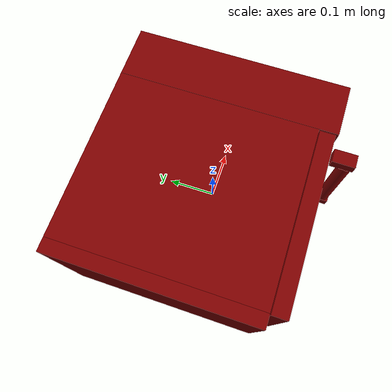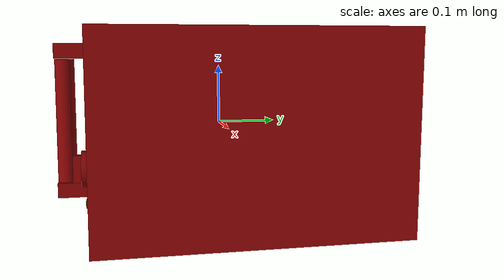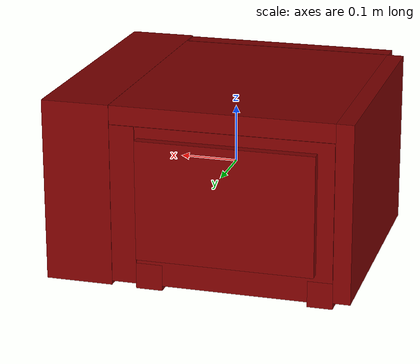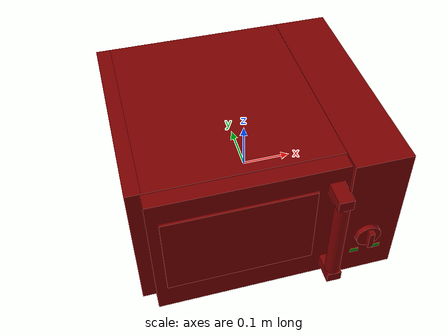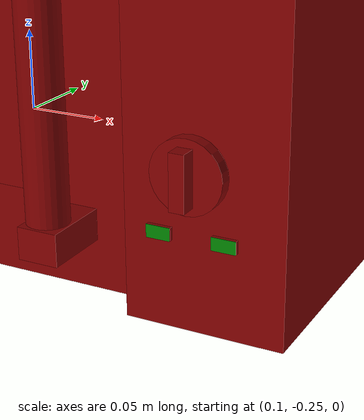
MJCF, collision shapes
<mujoco model="model">
  <compiler angle="radian"/>
  <asset>
    <mesh file="visuals/door.obj" name="door_vis"/>
    <mesh file="visuals/door_Clear.obj" name="door_Clear_vis"/>
    <mesh file="visuals/Body001.obj" name="Body001_vis"/>
    <mesh file="visuals/Button001.obj" name="Button001_vis"/>
    <mesh file="visuals/Button002.obj" name="Button002_vis"/>
    <mesh file="visuals/Disc001.obj" name="Disc001_vis"/>
    <mesh file="visuals/Knob001.obj" name="Knob001_vis"/>
    <texture file="visuals/T_BC001.png" name="Body001_material" type="2d"/>
    <material name="Body001_material" rgba="1 1 1 1.0" texture="Body001_material" shininess="0.4472135901451111" specular="0.3103448502657381"/>
    <texture file="visuals/T_BC001.png" name="door_material" type="2d"/>
    <material name="door_material" rgba="1 1 1 1.0" texture="door_material" shininess="0.4472135901451111" specular="0.3103448502657381"/>
    <material name="door_Clear_material" rgba="0.02614923194050789 0.02614923194050789 0.02614923194050789 0.8999999761581421" shininess="0.4472135901451111" specular="0.3103448502657381"/>
    <texture file="visuals/T_BC001.png" name="Button001_material" type="2d"/>
    <material name="Button001_material" rgba="1 1 1 1.0" texture="Button001_material" shininess="0.4472135901451111" specular="0.3103448502657381"/>
    <texture file="visuals/T_BC001.png" name="Button002_material" type="2d"/>
    <material name="Button002_material" rgba="1 1 1 1.0" texture="Button002_material" shininess="0.4472135901451111" specular="0.3103448502657381"/>
    <texture file="visuals/T_BC001.png" name="Disc001_material" type="2d"/>
    <material name="Disc001_material" rgba="1 1 1 1.0" texture="Disc001_material" shininess="0.4472135901451111" specular="0.3103448502657381"/>
    <texture file="visuals/T_BC001.png" name="Knob001_material" type="2d"/>
    <material name="Knob001_material" rgba="1 1 1 1.0" texture="Knob001_material" shininess="0.4472135901451111" specular="0.3103448502657381"/>
  </asset>
  <default>
    <default class="visual">
      <geom conaffinity="0" contype="0" group="1" type="mesh"/>
    </default>
    <default class="collision">
      <geom group="0" rgba="0.5 0 0 0.5"/>
    </default>
    <default class="spawn">
      <geom group="0" rgba="1 1 1 0.5" contype="0" conaffinity="0"/>
      <site group="0" rgba="1 1 1 0.5"/>
    </default>
    <default class="region">
      <geom group="1" conaffinity="0" contype="0" rgba="0 1 0 0"/>
    </default>
  </default>
  <worldbody>
    <body>
      <body name="object">
        <geom class="collision" type="box" pos="-0.06560337543487549 0.0 -0.10339121520519257" size="0.12126452475786209 0.12126452475786209 0.0008784863748587668" quat="1.0 0.0 0.0 0.0" name="tray" rgba="0 1 0 0.5"/>
        <geom class="collision" type="box" pos="0.17174172401428223 -0.22179532051086426 -0.08175776153802872" size="0.00878062006086111 0.0001540658122394234 0.0046617090702056885" quat="1.0 0.0 0.0 0.0" name="start_button" rgba="0.0 0.5 0 0.5"/>
        <geom class="collision" type="box" pos="0.21884146332740784 -0.22179532051086426 -0.08175776153802872" size="0.00878062378615141 0.00015406592865474522 0.00466171046718955" quat="1.0 0.0 0.0 0.0" name="stop_button" rgba="0.0 0.5 0 0.5"/>
        <geom mesh="Body001_vis" type="mesh" solimp="0.998 0.998 0.001" solref="0.001 1" density="100" friction="0.95 0.3 0.1" class="visual" material="Body001_material"/>
        <geom class="collision" type="box" pos="0.20260481536388397 0.017733678221702576 0.006201272830367088" size="0.057745590806007385 0.23598650097846985 0.15633100271224976" quat="1.0 0.0 0.0 0.0"/>
        <geom class="collision" type="box" pos="-0.24562764167785645 0.037938203662633896 0.011019268073141575" size="0.01472244132310152 0.21578072011470795 0.1515129655599594" quat="1.0 0.0 0.0 0.0"/>
        <geom class="collision" type="box" pos="-0.043323248624801636 0.037938203662633896 0.1464553326368332" size="0.18785139918327332 0.2157806158065796 0.016076261177659035" quat="1.0 0.0 0.0 0.0"/>
        <geom class="collision" type="box" pos="0.12333248555660248 0.0379381962120533 -0.006596706807613373" size="0.021194791421294212 0.21578048169612885 0.13651135563850403" quat="1.0 0.0 0.0 0.0"/>
        <geom class="collision" type="box" pos="-0.06453181058168411 0.21428245306015015 -0.006596706807613373" size="0.1658235639333725 0.039435576647520065 0.13651125133037567" quat="1.0 0.0 0.0 0.0"/>
        <geom class="collision" type="box" pos="-0.052900463342666626 0.26134318113327026 0.00855961348861456" size="0.1496560126543045 0.008506108075380325 0.10244230180978775" quat="1.0 0.0 0.0 0.0"/>
        <geom class="collision" type="box" pos="-0.06617458909749985 -0.0006304048001766205 -0.1310829371213913" size="0.12169666588306427 0.12449190020561218 0.020290575921535492" quat="1.0 0.0 0.0 0.0"/>
        <geom class="collision" type="cylinder" pos="0.18422241508960724 0.20088230073451996 -0.1562982201576233" size="0.0076891290955245495 0.006233311723917723" quat="1.0 0.0 0.0 0.0"/>
        <geom class="collision" type="cylinder" pos="-0.2033960074186325 0.20093315839767456 -0.1562982201576233" size="0.0076891290955245495 0.006233311723917723" quat="1.0 0.0 0.0 0.0"/>
        <geom class="collision" type="cylinder" pos="-0.2033960074186325 -0.1307898312807083 -0.1562982201576233" size="0.0076891290955245495 0.006233311723917723" quat="1.0 0.0 0.0 0.0"/>
        <geom class="collision" type="cylinder" pos="0.18422241508960724 -0.13078086078166962 -0.1562982201576233" size="0.0076891290955245495 0.006233311723917723" quat="1.0 0.0 0.0 0.0"/>
        <geom class="collision" type="box" pos="-0.20993509888648987 0.0379381962120533 -0.12881769239902496" size="0.021281475201249123 0.21578006446361542 0.02255580760538578" quat="1.0 0.0 0.0 0.0"/>
        <geom class="collision" type="box" pos="0.0796261876821518 0.0379381962120533 -0.12881769239902496" size="0.022679757326841354 0.21577996015548706 0.022555794566869736" quat="1.0 0.0 0.0 0.0"/>
        <geom class="collision" type="box" pos="-0.06573959439992905 -0.151581808924675 -0.12881769239902496" size="0.1227508932352066 0.026259683072566986 0.02255578152835369" quat="1.0 0.0 0.0 0.0"/>
        <geom class="collision" type="box" pos="-0.06573959439992905 0.1492924690246582 -0.12881769239902496" size="0.12275078892707825 0.025356236845254898 0.022555768489837646" quat="1.0 0.0 0.0 0.0"/>
        <body name="door">
          <joint axis="0.0 0.0 1.0" pos="-0.24042923748493195 -0.19968517124652863 0.012421272695064545" limited="true" name="microjoint" range="-1.5707963267948966 0.0" type="hinge" damping="1" frictionloss="1" armature=".01" stiffness="0.05"/>
          <geom mesh="door_vis" type="mesh" solimp="0.998 0.998 0.001" solref="0.001 1" density="100" friction="0.95 0.3 0.1" class="visual" material="door_material"/>
          <geom class="collision" type="box" pos="-0.04574286565184593 -0.19574102759361267 0.012378141283988953" size="0.1876501590013504 0.016191832721233368 0.15015338361263275" quat="1.0 0.0 0.0 0.0"/>
          <geom class="collision" type="cylinder" pos="0.11001839488744736 -0.2554267346858978 0.020983519032597542" size="0.014583306387066841 0.09386807680130005" quat="1.0 0.0 0.0 0.0" name="door_handle"/>
          <geom class="collision" type="box" pos="0.11032681912183762 -0.2453685849905014 0.12733007967472076" size="0.014486672356724739 0.024532847106456757 0.011350457556545734" quat="1.0 0.0 0.0 0.0"/>
          <geom class="collision" type="box" pos="0.11032681912183762 -0.2453685849905014 -0.0853961631655693" size="0.014486672356724739 0.024532847106456757 0.011350457556545734" quat="1.0 0.0 0.0 0.0"/>
          <body name="door_Clear">
            <geom mesh="door_Clear_vis" type="mesh" solimp="0.998 0.998 0.001" solref="0.001 1" density="100" friction="0.95 0.3 0.1" class="visual" material="door_Clear_material"/>
            <geom class="collision" type="box" pos="-0.0656575858592987 -0.2149108648300171 0.021771375089883804" size="0.146141916513443 0.0026013606693595648 0.09315399080514908" quat="1.0 0.0 0.0 0.0"/>
          </body>
        </body>
        <body name="Button001">
          <joint axis="0.0 1.0 0.0" pos="0.1717521697282791 -0.21999520063400269 -0.08224629610776901" limited="true" name="Button001_joint" range="0.0 0.002" type="slide" damping="1" frictionloss="1" armature=".01" stiffness="0.05"/>
          <geom mesh="Button001_vis" type="mesh" solimp="0.998 0.998 0.001" solref="0.001 1" density="100" friction="0.95 0.3 0.1" class="visual" material="Button001_material"/>
          <geom class="collision" type="box" pos="0.17174172401428223 -0.2200479954481125 -0.08175776153802872" size="0.008780617266893387 0.0014315831940621138 0.004661707207560539" quat="1.0 0.0 0.0 0.0"/>
        </body>
        <body name="Button002">
          <joint axis="0.0 1.0 0.0" pos="0.21889732778072357 -0.21999520063400269 -0.08224629610776901" limited="true" name="Button002_joint" range="0.0 0.002" type="slide" damping="1" frictionloss="1" armature=".01" stiffness="0.05"/>
          <geom mesh="Button002_vis" type="mesh" solimp="0.998 0.998 0.001" solref="0.001 1" density="100" friction="0.95 0.3 0.1" class="visual" material="Button002_material"/>
          <geom class="collision" type="box" pos="0.21884146332740784 -0.2200479954481125 -0.08175776153802872" size="0.008780626580119133 0.0014315856387838721 0.0046617123298347" quat="1.0 0.0 0.0 0.0"/>
        </body>
        <body name="Disc001">
          <joint axis="0.0 0.0 1.0" pos="-0.06596428155899048 -0.00033851340413093567 -0.10561323910951614" limited="false" name="Disc001_joint" range="0 360" type="hinge" damping="1" frictionloss="1" armature=".01" stiffness="0.05"/>
          <geom mesh="Disc001_vis" type="mesh" solimp="0.998 0.998 0.001" solref="0.001 1" density="100" friction="0.95 0.3 0.1" class="visual" material="Disc001_material"/>
          <geom class="collision" type="cylinder" pos="-0.06560337543487549 0.0 -0.10716009885072708" size="0.12126270681619644 0.002095442730933428" quat="1.0 0.0 0.0 0.0"/>
        </body>
        <body name="Knob001">
          <joint axis="0.0 1.0 0.0" pos="0.19532474875450134 -0.22898626327514648 -0.03751338645815849" limited="true" name="Knob001_joint" range="0.0 4.886921905584122" type="hinge" damping="0.05" armature="0.001" springref="-0.01"/>
          <geom mesh="Knob001_vis" type="mesh" solimp="0.998 0.998 0.001" solref="0.001 1" density="100" friction="0.95 0.3 0.1" class="visual" material="Knob001_material"/>
          <geom class="collision" type="cylinder" pos="0.195235475897789 -0.2235260307788849 -0.03755658492445946" size="0.02586897648870945 0.004739708267152309" quat="0.7071067094802856 0.7071068286895752 0.0 0.0"/>
          <geom class="collision" type="box" pos="0.19523900747299194 -0.23421739041805267 -0.037439849227666855" size="0.005406546872109175 0.0061933123506605625 0.01956542767584324" quat="1.0 0.0 0.0 0.0"/>
        </body>
        <geom class="region" name="reg_main" type="box" pos="0.0 0.025326639413833618 0.0" size="0.26034998893737793 0.24452263116836548 0.1625315248966217"/>
        <geom class="region" name="reg_int" type="box" pos="-0.06580423936247826 0.0016340985894203186 0.011599719524383545" size="0.16792020574212074 0.17609546333551407 0.11892573535442352"/>
      </body>
    </body>
  </worldbody>
  <actuator>
    <motor name="microjoint_actuator" joint="microjoint" gear="10"/>
    <motor name="Button001_joint_actuator" joint="Button001_joint" gear="0.5"/>
    <motor name="Button002_joint_actuator" joint="Button002_joint" gear="0.5"/>
    <motor name="Disc001_joint_actuator" joint="Disc001_joint" gear="0.5"/>
    <motor name="Knob001_joint_actuator" joint="Knob001_joint" gear="0.5"/>
  </actuator>
</mujoco>
